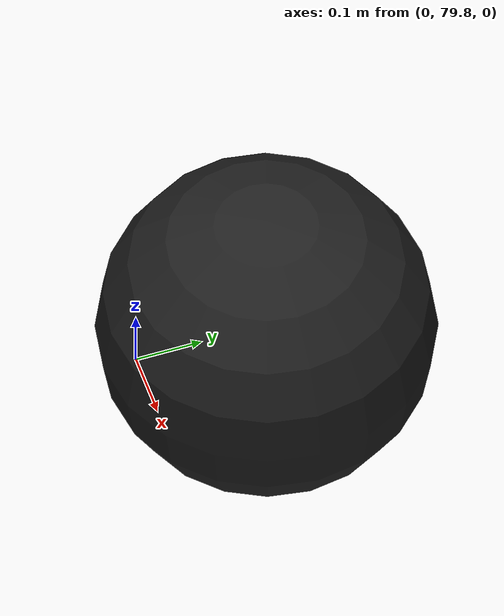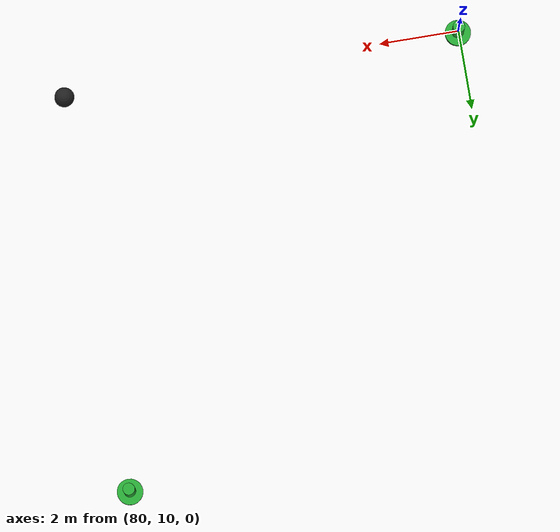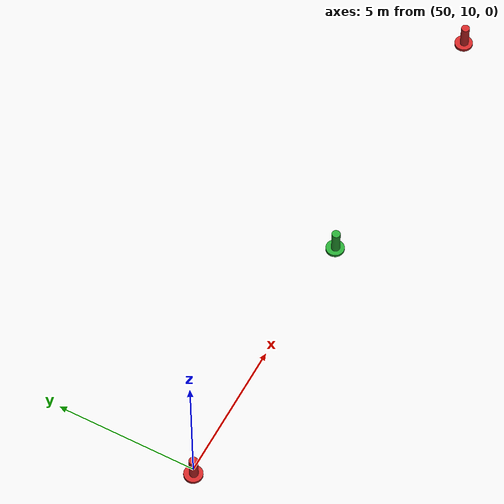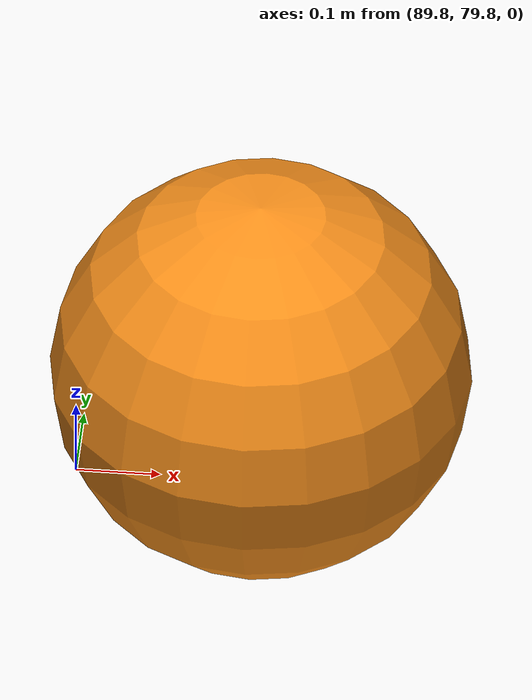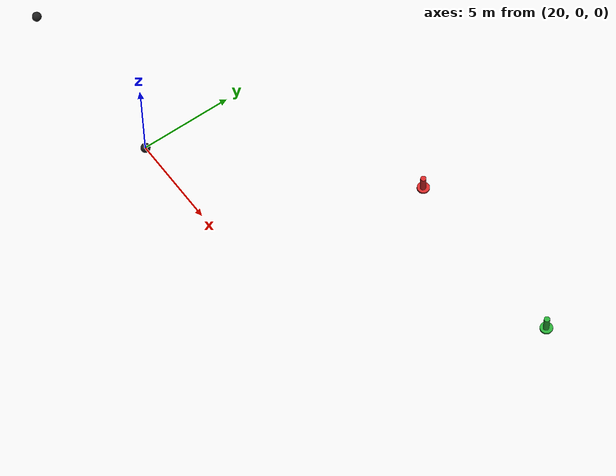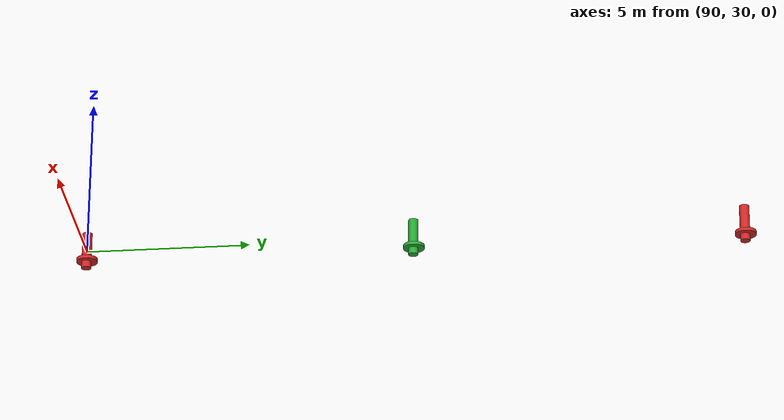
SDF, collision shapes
<?xml version="1.0"?>
<!-- automatically generated by the 'generate_avoid_obstacls_buoys' script -->
<!-- aimm navigation course -->
<sdf version="1.6">
 <model name="obstacle_course0">
   <include>
     <name>start</name>
     <pose>10 0 0.0 0 0 0 </pose>
     <uri>model://mb_round_buoy_black</uri>
   </include>

   <include>
     <name>gate_a</name>
     <pose>20 0 0.0 0 0 0 </pose>
     <uri>model://mb_round_buoy_black</uri>
   </include>

   <include>
     <name>slalom_marker_1</name>
     <pose>30.0 10.0 0.0 0 0 0 </pose>
     <uri>model://mb_marker_buoy_red</uri>
   </include>

   <include>
     <name>slalom_marker_2</name>
     <pose>40.0 10.0 0.0 0 0 0 </pose>
     <uri>model://mb_marker_buoy_green</uri>
   </include>

   <include>
     <name>slalom_marker_3</name>
     <pose>50.0 10.0 0.0 0 0 0 </pose>
     <uri>model://mb_marker_buoy_red</uri>
   </include>

   <include>
     <name>slalom_marker_4</name>
     <pose>60.0 10.0 0.0 0 0 0 </pose>
     <uri>model://mb_marker_buoy_green</uri>
   </include>

   <include>
     <name>slalom_marker_5</name>
     <pose>70.0 10.0 0.0 0 0 0 </pose>
     <uri>model://mb_marker_buoy_red</uri>
   </include>

   <include>
     <name>slalom_marker_6</name>
     <pose>80.0 10.0 0.0 0 0 0 </pose>
     <uri>model://mb_marker_buoy_green</uri>
   </include>

   <include>
     <name>gate_b</name>
     <pose>90.0 10.0 0.0 0 0 0 </pose>
     <uri>model://mb_round_buoy_black</uri>
   </include>

   <include>
     <name>gate_c</name>
     <pose>90.0 10.0 0.0 0 0 0 </pose>
     <uri>model://mb_round_buoy_black</uri>
   </include>

   <include>
     <name>game_of_rings_1</name>
     <pose>90.0 20.0 0.0 0 0 0 </pose>
     <uri>model://mb_marker_buoy_green</uri>
   </include>

   <include>
     <name>game_of_rings_2</name>
     <pose>90.0 30.0 0.0 0 0 0 </pose>
     <uri>model://mb_marker_buoy_red</uri>
   </include>

   <include>
     <name>game_of_rings_3</name>
     <pose>90.0 40.0 0.0 0 0 0 </pose>
     <uri>model://mb_marker_buoy_green</uri>
   </include>

   <include>
     <name>game_of_rings_4</name>
     <pose>90.0 50.0 0.0 0 0 0 </pose>
     <uri>model://mb_marker_buoy_red</uri>
   </include>

   <include>
     <name>game_of_rings_5</name>
     <pose>90.0 60.0 0.0 0 0 0 </pose>
     <uri>model://mb_marker_buoy_green</uri>
   </include>

   <include>
     <name>pick_color</name>
     <pose>90.0 80.0 0.0 0 0 0 </pose>
     <uri>model://mb_round_buoy_orange</uri>
   </include>

   <include>
     <name>sensor_deployment</name>
     <pose>45 80 0.0 0 0 0 </pose>
     <uri>model://mb_round_buoy_black</uri>
   </include>

   <include>
     <name>shore_deployment</name>
     <pose>0.0 80 0.0 0 0 0 </pose>
     <uri>model://mb_round_buoy_black</uri>
   </include>

   <include>
     <name>search_and_rescue</name>
     <pose>0.0 40 0.0 0 0 0 </pose>
     <uri>model://mb_round_buoy_black</uri>
   </include>

   <include>
     <name>finish</name>
     <pose>0.0 10 0.0 0 0 0 </pose>
     <uri>model://mb_round_buoy_black</uri>
   </include>
  </model>
</sdf>

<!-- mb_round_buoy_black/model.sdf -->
<sdf version="1.6">
  <model name="mb_round_buoy_black">
    <link name="link">
      <inertial>
        <pose>0 0 -2 0 0 0</pose>
        <!-- Mass determined based on buoyancy geometry so object
             floats at mid-point of sphere -->
        <mass>3.5</mass>
        <!-- Mark only - based on cylinder -->
        <inertia>
          <ixx>1.0</ixx>
          <ixy>0</ixy>
          <ixz>0</ixz>
          <iyy>1.0</iyy>
          <iyz>0</iyz>
          <izz>0.1</izz>
        </inertia>
      </inertial>
      <collision name="collision">
        <geometry>
          <sphere>
            <radius>0.25</radius>
          </sphere>
        </geometry>
      </collision>
      <visual name="visual">
        <geometry>
	        <mesh><uri>model://mb_round_buoy_orange/meshes/mb_round_buoy.dae</uri></mesh>
        </geometry>
        <material>
          <script>
            <uri>file://media/materials/scripts/gazebo.material</uri>
            <name>Gazebo/Black</name>
          </script>
        </material>
      </visual>
    </link>
    <plugin name="BuoyancyPlugin" filename="libbuoyancy_gazebo_plugin.so">
      <wave_model>ocean_waves</wave_model>
      <fluid_density>1000</fluid_density>
      <fluid_level>0.0</fluid_level>
      <linear_drag>25.0</linear_drag>
      <angular_drag>2.0</angular_drag>
      <buoyancy name="buoyancy_sphere">
        <link_name>link</link_name>
        <pose>0 0 0.02 0 0 0</pose>
        <geometry>
          <sphere>
            <radius>0.235</radius>
          </sphere>
        </geometry>
      </buoyancy>
    </plugin>
  </model>
</sdf>

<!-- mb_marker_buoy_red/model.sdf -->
<sdf version="1.6">
  <model name="mb_marker_buoy_red">
    <link name="link">
      <inertial>
        <pose>0 0 -2 0 0 0</pose>
        <!-- Mass determined based on buoyancy geometry so object
             floats at mid-point of sphere -->
        <mass>20</mass>
        <!-- Mark only - based on cylinder -->
        <inertia>
          <ixx>1.0</ixx>
          <ixy>0</ixy>
          <ixz>0</ixz>
          <iyy>1.0</iyy>
          <iyz>0</iyz>
          <izz>0.1</izz>
        </inertia>
      </inertial>
      <collision name="collision_inner">
        <pose>0 -0.02 0.02 0 0 0</pose>
        <geometry>
          <cylinder>
            <radius>0.15</radius>
            <length>1.15</length>
          </cylinder>
        </geometry>
      </collision>
      <collision name="collision_outer">
        <pose>0 0 -0.3 0 0 0</pose>
        <geometry>
          <cylinder>
            <radius>0.325</radius>
            <length>0.1</length>
          </cylinder>
        </geometry>
      </collision>
      <visual name="visual">
        <pose>0 0 0 1.57079 0 0</pose>
        <geometry>
	        <mesh><uri>model://mb_marker_buoy_red/meshes/mb_marker_buoy.dae</uri></mesh>
        </geometry>
        <material>
          <script>
            <uri>model://mb_marker_buoy_red/materials/scripts/mb_marker_buoy.material</uri>
            <name>mb_marker_buoy/Red</name>
          </script>
        </material>
      </visual>
    </link>
    <plugin name="BuoyancyPlugin" filename="libbuoyancy_gazebo_plugin.so">
      <wave_model>ocean_waves</wave_model>
      <fluid_density>1000</fluid_density>
      <fluid_level>0.0</fluid_level>
      <linear_drag>25.0</linear_drag>
      <angular_drag>2.0</angular_drag>
      <buoyancy name="buoyancy_sphere">
        <link_name>link</link_name>
        <pose>0 0 -0.12 0 0 0</pose>
        <geometry>
          <sphere>
            <radius>0.325</radius>
          </sphere>
        </geometry>
      </buoyancy>
    </plugin>
  </model>
</sdf>

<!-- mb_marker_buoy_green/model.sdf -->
<sdf version="1.6">
  <model name="mb_marker_buoy_green">
    <link name="link">
      <inertial>
        <pose>0 0 -2 0 0 0</pose>
        <!-- Mass determined based on buoyancy geometry so object
             floats at mid-point of sphere -->
        <mass>20</mass>
        <!-- Mark only - based on cylinder -->
        <inertia>
          <ixx>1.0</ixx>
          <ixy>0</ixy>
          <ixz>0</ixz>
          <iyy>1.0</iyy>
          <iyz>0</iyz>
          <izz>0.1</izz>
        </inertia>
      </inertial>
      <collision name="collision_inner">
        <pose>0 -0.02 0.02 0 0 0</pose>
        <geometry>
          <cylinder>
            <radius>0.15</radius>
            <length>1.15</length>
          </cylinder>
        </geometry>
      </collision>
      <collision name="collision_outer">
        <pose>0 0 -0.3 0 0 0</pose>
        <geometry>
          <cylinder>
            <radius>0.325</radius>
            <length>0.1</length>
          </cylinder>
        </geometry>
      </collision>
      <visual name="visual">
        <pose>0 0 0 1.57079 0 0</pose>
        <geometry>
	        <mesh><uri>model://mb_marker_buoy_red/meshes/mb_marker_buoy.dae</uri></mesh>
        </geometry>
        <material>
          <script>
            <uri>model://mb_marker_buoy_green/materials/scripts/mb_marker_buoy.material</uri>
            <name>mb_marker_buoy/Green</name>
          </script>
        </material>
      </visual>
    </link>
    <plugin name="BuoyancyPlugin" filename="libbuoyancy_gazebo_plugin.so">
      <wave_model>ocean_waves</wave_model>
      <fluid_density>1000</fluid_density>
      <fluid_level>0.0</fluid_level>
      <linear_drag>25.0</linear_drag>
      <angular_drag>2.0</angular_drag>
      <buoyancy name="buoyancy_sphere">
        <link_name>link</link_name>
        <pose>0 0 -0.12 0 0 0</pose>
        <geometry>
          <sphere>
            <radius>0.325</radius>
          </sphere>
        </geometry>
      </buoyancy>
    </plugin>
  </model>
</sdf>

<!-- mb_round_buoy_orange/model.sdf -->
<sdf version="1.6">
  <model name="mb_round_buoy_orange">
    <link name="link">
      <inertial>
        <pose>0 0 -2 0 0 0</pose>
        <!-- Mass determined based on buoyancy geometry so object
             floats at mid-point of sphere -->
        <mass>3.5</mass>
        <!-- Mark only - based on cylinder -->
        <inertia>
          <ixx>1.0</ixx>
          <ixy>0</ixy>
          <ixz>0</ixz>
          <iyy>1.0</iyy>
          <iyz>0</iyz>
          <izz>0.1</izz>
        </inertia>
      </inertial>
      <collision name="collision">
        <geometry>
          <sphere>
            <radius>0.25</radius>
          </sphere>
        </geometry>
      </collision>
      <visual name="visual">
        <geometry>
	        <mesh><uri>model://mb_round_buoy_orange/meshes/mb_round_buoy.dae</uri></mesh>
        </geometry>
        <material>
          <script>
            <uri>model://mb_round_buoy_orange/materials/scripts/mb_round_buoy.material</uri>
            <name>mb_round_buoy/Orange</name>
          </script>
        </material>
      </visual>
    </link>
    <plugin name="BuoyancyPlugin" filename="libbuoyancy_gazebo_plugin.so">
      <wave_model>ocean_waves</wave_model>
      <fluid_density>1000</fluid_density>
      <fluid_level>0.0</fluid_level>
      <linear_drag>25.0</linear_drag>
      <angular_drag>2.0</angular_drag>
      <buoyancy name="buoyancy_sphere">
        <link_name>link</link_name>
        <pose>0 0 0.02 0 0 0</pose>
        <geometry>
          <sphere>
            <radius>0.235</radius>
          </sphere>
        </geometry>
      </buoyancy>
    </plugin>
  </model>
</sdf>
